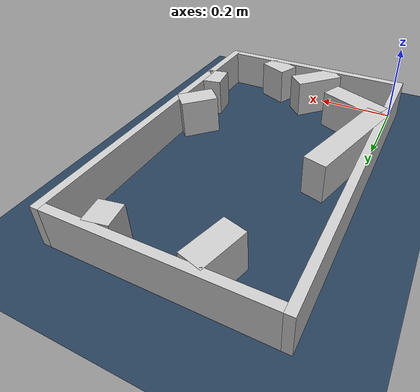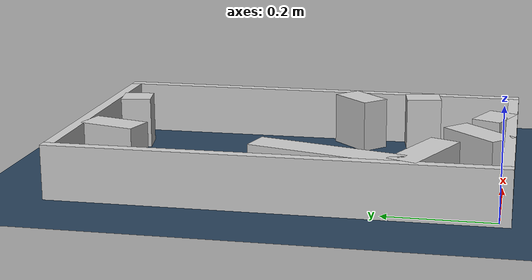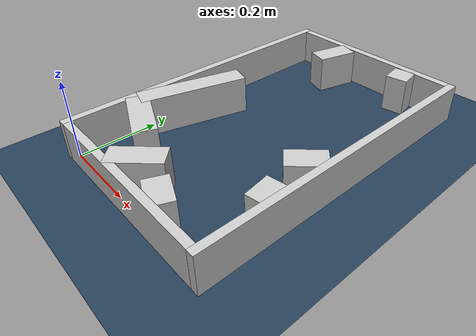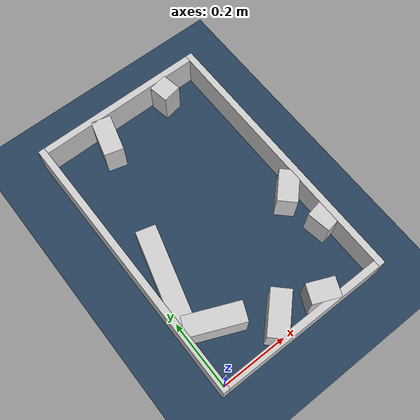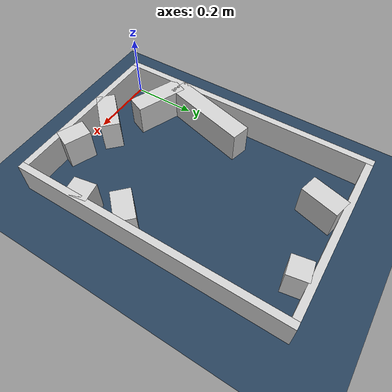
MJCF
<?xml version="1.0" ?>
<mujoco model="generated_real_template">
  <compiler angle="degree"/>
  <option timestep="0.002" integrator="implicitfast" iterations="100" cone="elliptic"/>
  <default>
    <geom density="1"/>
  </default>
  <asset>
    <texture builtin="gradient" height="3072" rgb1="0.3 0.5 0.7" rgb2="0 0 0" type="skybox" width="512"/>
    <texture builtin="checker" height="300" mark="edge" markrgb="0.8 0.8 0.8" name="groundplane" rgb1="0.2 0.3 0.4" rgb2="0.1 0.2 0.3" type="2d" width="300"/>
    <material name="groundplane" reflectance="0.2" texrepeat="5 5" texture="groundplane" texuniform="true"/>
  </asset>
  <worldbody>
    <light dir="0 0 -1" directional="true" pos="0 0 1.5"/>
    <geom name="floor" type="plane" condim="4" friction="0.5 0.005 0.001" material="groundplane" size="0 0 0.05"/>
    <body name="walls">
      <geom name="wall_boundary_left" type="box" condim="4" friction="1.0 0.005 0.0001" rgba="0.8 0.8 0.8 1" pos="-0.010000 0.387500 0.050000" euler="0 0 0.000000" size="0.010000 0.407500 0.050000"/>
      <geom name="wall_boundary_right" type="box" condim="4" friction="1.0 0.005 0.0001" rgba="0.8 0.8 0.8 1" pos="0.500000 0.387500 0.050000" euler="0 0 0.000000" size="0.010000 0.407500 0.050000"/>
      <geom name="wall_boundary_bottom" type="box" condim="4" friction="1.0 0.005 0.0001" rgba="0.8 0.8 0.8 1" pos="0.245000 -0.010000 0.050000" euler="0 0 0.000000" size="0.245000 0.010000 0.050000"/>
      <geom name="wall_boundary_top" type="box" condim="4" friction="1.0 0.005 0.0001" rgba="0.8 0.8 0.8 1" pos="0.245000 0.785000 0.050000" euler="0 0 0.000000" size="0.245000 0.010000 0.050000"/>
      <geom name="wall_inner_1_1" type="box" condim="4" friction="1.0 0.005 0.0001" rgba="0.8 0.8 0.8 1" pos="0.377188 0.746005 0.050000" euler="0 0 -80.241912" size="0.029421 0.028500 0.050000"/>
      <geom name="wall_inner_1_2" type="box" condim="4" friction="1.0 0.005 0.0001" rgba="0.8 0.8 0.8 1" pos="0.476081 0.170966 0.050000" euler="0 0 -80.241912" size="0.034399 0.028500 0.050000"/>
      <geom name="wall_inner_2_1" type="box" condim="4" friction="1.0 0.005 0.0001" rgba="0.8 0.8 0.8 1" pos="0.336599 0.022088 0.050000" euler="0 0 156.788898" size="0.040328 0.028500 0.050000"/>
      <geom name="wall_inner_2_2" type="box" condim="4" friction="1.0 0.005 0.0001" rgba="0.8 0.8 0.8 1" pos="0.074473 0.134496 0.050000" euler="0 0 156.788898" size="0.081032 0.028500 0.050000"/>
      <geom name="wall_inner_3_1" type="box" condim="4" friction="1.0 0.005 0.0001" rgba="0.8 0.8 0.8 1" pos="0.044022 0.299924 0.050000" euler="0 0 74.691048" size="0.138368 0.028500 0.050000"/>
      <geom name="wall_inner_3_2" type="box" condim="4" friction="1.0 0.005 0.0001" rgba="0.8 0.8 0.8 1" pos="0.159341 0.721200 0.050000" euler="0 0 74.691048" size="0.055779 0.028500 0.050000"/>
      <geom name="wall_inner_4_1" type="box" condim="4" friction="1.0 0.005 0.0001" rgba="0.8 0.8 0.8 1" pos="0.456383 0.295653 0.050000" euler="0 0 -134.371991" size="0.047538 0.028500 0.050000"/>
      <geom name="wall_inner_4_2" type="box" condim="4" friction="1.0 0.005 0.0001" rgba="0.8 0.8 0.8 1" pos="0.212275 0.046135 0.050000" euler="0 0 -134.371991" size="0.064542 0.028500 0.050000"/>
    </body>
  </worldbody>
</mujoco>
